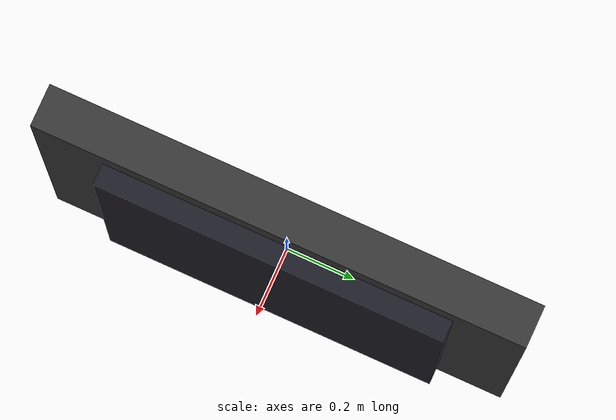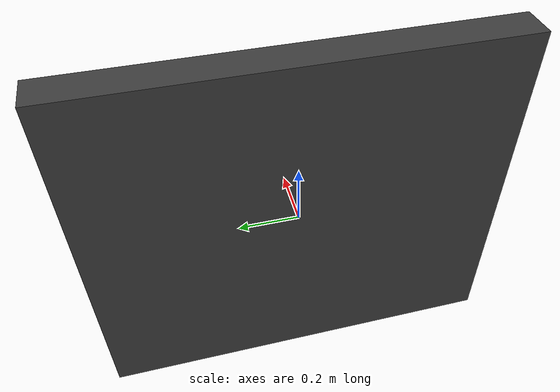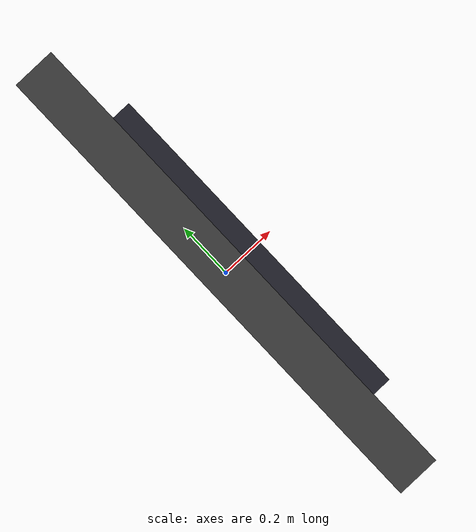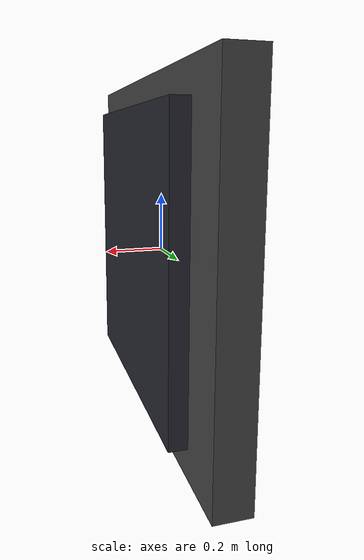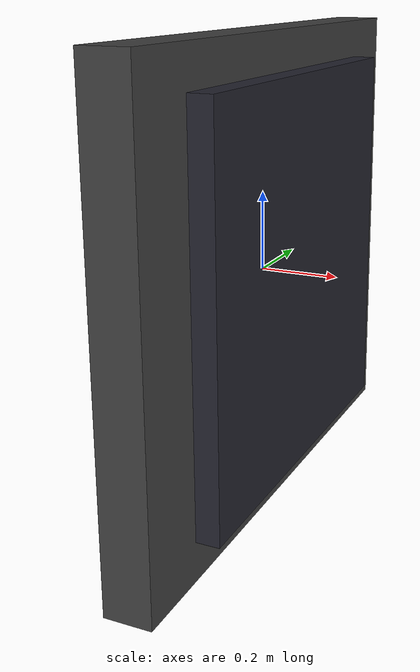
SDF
<?xml version="1.0" ?>
<sdf version="1.9">
  <model name="vault_door">
    <static>true</static>
    <link name="frame_link">
      <collision name="frame_collision">
        <geometry>
          <box>
            <size>0.12 1.40 1.20</size>
          </box>
        </geometry>
      </collision>
      <visual name="frame_visual">
        <geometry>
          <box>
            <size>0.12 1.40 1.20</size>
          </box>
        </geometry>
        <material>
          <ambient>0.18 0.18 0.18 1</ambient>
          <diffuse>0.25 0.25 0.25 1</diffuse>
          <specular>0.35 0.35 0.35 1</specular>
        </material>
      </visual>

      <collision name="door_collision">
        <pose>0.09 0 0 0 0 0</pose>
        <geometry>
          <box>
            <size>0.06 1.00 1.00</size>
          </box>
        </geometry>
      </collision>
      <visual name="door_visual">
        <pose>0.09 0 0 0 0 0</pose>
        <geometry>
          <box>
            <size>0.06 1.00 1.00</size>
          </box>
        </geometry>
        <material>
          <ambient>0.10 0.10 0.12 1</ambient>
          <diffuse>0.14 0.14 0.18 1</diffuse>
          <specular>0.25 0.25 0.28 1</specular>
        </material>
      </visual>
    </link>
  </model>
</sdf>
